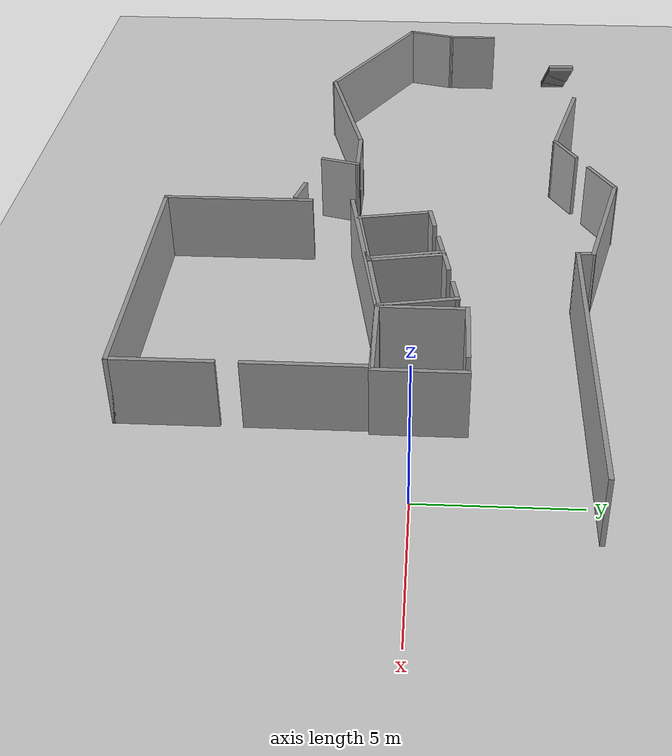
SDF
<sdf version="1.6">
 <world name="default">
  <model name="ground_plane">
   <static>1</static>
   <link name="link">
    <collision name="collision">
     <geometry><plane><normal>0 0 1</normal><size>100 100</size></plane></geometry>
     <surface>
      <contact><collide_bitmask>65535</collide_bitmask></contact>
      <friction><ode><mu>100</mu><mu2>50</mu2></ode></friction>
     </surface>
    </collision>
    <visual name="visual">
     <cast_shadows>0</cast_shadows>
     <geometry><plane><normal>0 0 1</normal><size>100 100</size></plane></geometry>
     <material>
      <script><uri>file://media/materials/scripts/gazebo.material</uri><name>Gazebo/Grey</name></script>
     </material>
    </visual>
   </link>
  </model>
  <model name="102Main_0">
   <pose>-7.64883 -5.15367 0 0 -0 0</pose>
   <link name="Wall_10">
    <collision name="Wall_10_Collision">
     <geometry><box><size>3 0.15 2.5</size></box></geometry>
     <pose>0 0 1.25 0 -0 0</pose>
    </collision>
    <visual name="Wall_10_Visual">
     <pose>0 0 1.25 0 -0 0</pose>
     <geometry><box><size>3 0.15 2.5</size></box></geometry>
     <material>
      <script><uri>file://media/materials/scripts/gazebo.material</uri><name>Gazebo/Grey</name></script>
      <ambient>1 1 1 1</ambient>
     </material>
     <meta><layer>0</layer></meta>
    </visual>
    <pose>3.19383 3.93367 0 0 -0 3.14159</pose>
   </link>
   <link name="Wall_11">
    <collision name="Wall_11_Collision">
     <geometry><box><size>6.63844 0.15 2.5</size></box></geometry>
     <pose>0 0 1.25 0 -0 0</pose>
    </collision>
    <visual name="Wall_11_Visual">
     <pose>0 0 1.25 0 -0 0</pose>
     <geometry><box><size>6.63844 0.15 2.5</size></box></geometry>
     <material>
      <script><uri>file://media/materials/scripts/gazebo.material</uri><name>Gazebo/Grey</name></script>
      <ambient>1 1 1 1</ambient>
     </material>
     <meta><layer>0</layer></meta>
    </visual>
    <pose>-1.41867 3.32967 0 0 -0 -2.95432</pose>
   </link>
   <link name="Wall_2">
    <collision name="Wall_2_Collision">
     <geometry><box><size>4 0.15 2.5</size></box></geometry>
     <pose>0 0 1.25 0 -0 0</pose>
    </collision>
    <visual name="Wall_2_Visual">
     <pose>0 0 1.25 0 -0 0</pose>
     <geometry><box><size>4 0.15 2.5</size></box></geometry>
     <material>
      <script><uri>file://media/materials/scripts/gazebo.material</uri><name>Gazebo/Grey</name></script>
      <ambient>1 1 1 1</ambient>
     </material>
     <meta><layer>0</layer></meta>
    </visual>
    <pose>4.61883 2.00867 0 0 -0 -1.5708</pose>
   </link>
   <link name="Wall_4">
    <collision name="Wall_4_Collision">
     <geometry><box><size>3.33 0.15 2.5</size></box></geometry>
     <pose>0 0 1.25 0 -0 0</pose>
    </collision>
    <visual name="Wall_4_Visual">
     <pose>0 0 1.25 0 -0 0</pose>
     <geometry><box><size>3.33 0.15 2.5</size></box></geometry>
     <material>
      <script><uri>file://media/materials/scripts/gazebo.material</uri><name>Gazebo/Grey</name></script>
      <ambient>1 1 1 1</ambient>
     </material>
     <meta><layer>0</layer></meta>
    </visual>
    <pose>4.61883 -2.35633 0 0 -0 -1.5708</pose>
   </link>
   <link name="Wall_6">
    <collision name="Wall_6_Collision">
     <geometry><box><size>9.33 0.15 2.5</size></box></geometry>
     <pose>0 0 1.25 0 -0 0</pose>
    </collision>
    <visual name="Wall_6_Visual">
     <pose>0 0 1.25 0 -0 0</pose>
     <geometry><box><size>9.33 0.15 2.5</size></box></geometry>
     <material>
      <script><uri>file://media/materials/scripts/gazebo.material</uri><name>Gazebo/Grey</name></script>
      <ambient>1 1 1 1</ambient>
     </material>
     <meta><layer>0</layer></meta>
    </visual>
    <pose>0.028826 -3.94633 0 0 -0 3.14159</pose>
   </link>
   <link name="Wall_8">
    <collision name="Wall_8_Collision">
     <geometry><box><size>5.33 0.15 2.5</size></box></geometry>
     <pose>0 0 1.25 0 -0 0</pose>
    </collision>
    <visual name="Wall_8_Visual">
     <pose>0 0 1.25 0 -0 0</pose>
     <geometry><box><size>5.33 0.15 2.5</size></box></geometry>
     <material>
      <script><uri>file://media/materials/scripts/gazebo.material</uri><name>Gazebo/Grey</name></script>
      <ambient>1 1 1 1</ambient>
     </material>
     <meta><layer>0</layer></meta>
    </visual>
    <pose>-4.56117 -1.35633 0 0 -0 1.5708</pose>
   </link>
   <static>1</static>
  </model>
  <model name="195">
   <pose>-10.1492 -0.660141 0 0 -0 0.184616</pose>
   <link name="Wall_52">
    <collision name="Wall_52_Collision">
     <geometry><box><size>2.667 0.15 2.5</size></box></geometry>
     <pose>0 0 1.25 0 -0 0</pose>
    </collision>
    <visual name="Wall_52_Visual">
     <pose>0 0 1.25 0 -0 0</pose>
     <geometry><box><size>2.667 0.15 2.5</size></box></geometry>
     <material>
      <script><uri>file://media/materials/scripts/gazebo.material</uri><name>Gazebo/Grey</name></script>
      <ambient>1 1 1 1</ambient>
     </material>
     <meta><layer>0</layer></meta>
    </visual>
    <pose>-0.000138 -1.2585 0 0 -0 0</pose>
   </link>
   <link name="Wall_53">
    <collision name="Wall_53_Collision">
     <geometry><box><size>2.667 0.15 2.5</size></box></geometry>
     <pose>0 0 1.25 0 -0 0</pose>
    </collision>
    <visual name="Wall_53_Visual">
     <pose>0 0 1.25 0 -0 0</pose>
     <geometry><box><size>2.667 0.15 2.5</size></box></geometry>
     <material>
      <script><uri>file://media/materials/scripts/gazebo.material</uri><name>Gazebo/Grey</name></script>
      <ambient>1 1 1 1</ambient>
     </material>
     <meta><layer>0</layer></meta>
    </visual>
    <pose>1.2585 0 0 0 -0 1.57069</pose>
   </link>
   <link name="Wall_55">
    <collision name="Wall_55_Collision">
     <geometry><box><size>2.667 0.15 2.5</size></box></geometry>
     <pose>0 0 1.25 0 -0 0</pose>
    </collision>
    <visual name="Wall_55_Visual">
     <pose>0 0 1.25 0 -0 0</pose>
     <geometry><box><size>2.667 0.15 2.5</size></box></geometry>
     <material>
      <script><uri>file://media/materials/scripts/gazebo.material</uri><name>Gazebo/Grey</name></script>
      <ambient>1 1 1 1</ambient>
     </material>
     <meta><layer>0</layer></meta>
    </visual>
    <pose>-1.2585 0 0 0 -0 -1.57091</pose>
   </link>
   <link name="Wall_57">
    <collision name="Wall_57_Collision">
     <geometry><box><size>1 0.15 2.5</size></box></geometry>
     <pose>0 0 1.25 0 -0 0</pose>
    </collision>
    <visual name="Wall_57_Visual">
     <pose>0 0 1.25 0 -0 0</pose>
     <geometry><box><size>1 0.15 2.5</size></box></geometry>
     <material>
      <script><uri>file://media/materials/scripts/gazebo.material</uri><name>Gazebo/Grey</name></script>
      <ambient>1 1 1 1</ambient>
     </material>
     <meta><layer>0</layer></meta>
    </visual>
    <pose>0.833639 1.2585 0 0 -0 3.14159</pose>
   </link>
   <link name="Wall_59">
    <collision name="Wall_59_Collision">
     <geometry><box><size>1 0.15 2.5</size></box></geometry>
     <pose>0 0 1.25 0 -0 0</pose>
    </collision>
    <visual name="Wall_59_Visual">
     <pose>0 0 1.25 0 -0 0</pose>
     <geometry><box><size>1 0.15 2.5</size></box></geometry>
     <material>
      <script><uri>file://media/materials/scripts/gazebo.material</uri><name>Gazebo/Grey</name></script>
      <ambient>1 1 1 1</ambient>
     </material>
     <meta><layer>0</layer></meta>
    </visual>
    <pose>-0.833361 1.2585 0 0 -0 3.14159</pose>
   </link>
   <static>1</static>
  </model>
  <model name="195_0">
   <pose>-7.52738 -0.162435 0 0 -0 0.178379</pose>
   <link name="Wall_52">
    <collision name="Wall_52_Collision">
     <geometry><box><size>2.667 0.15 2.5</size></box></geometry>
     <pose>0 0 1.25 0 -0 0</pose>
    </collision>
    <visual name="Wall_52_Visual">
     <pose>0 0 1.25 0 -0 0</pose>
     <geometry><box><size>2.667 0.15 2.5</size></box></geometry>
     <material>
      <script><uri>file://media/materials/scripts/gazebo.material</uri><name>Gazebo/Grey</name></script>
      <ambient>1 1 1 1</ambient>
     </material>
     <meta><layer>0</layer></meta>
    </visual>
    <pose>-0.000138 -1.2585 0 0 -0 0</pose>
   </link>
   <link name="Wall_53">
    <collision name="Wall_53_Collision">
     <geometry><box><size>2.667 0.15 2.5</size></box></geometry>
     <pose>0 0 1.25 0 -0 0</pose>
    </collision>
    <visual name="Wall_53_Visual">
     <pose>0 0 1.25 0 -0 0</pose>
     <geometry><box><size>2.667 0.15 2.5</size></box></geometry>
     <material>
      <script><uri>file://media/materials/scripts/gazebo.material</uri><name>Gazebo/Grey</name></script>
      <ambient>1 1 1 1</ambient>
     </material>
     <meta><layer>0</layer></meta>
    </visual>
    <pose>1.2585 0 0 0 -0 1.57069</pose>
   </link>
   <link name="Wall_55">
    <collision name="Wall_55_Collision">
     <geometry><box><size>2.667 0.15 2.5</size></box></geometry>
     <pose>0 0 1.25 0 -0 0</pose>
    </collision>
    <visual name="Wall_55_Visual">
     <pose>0 0 1.25 0 -0 0</pose>
     <geometry><box><size>2.667 0.15 2.5</size></box></geometry>
     <material>
      <script><uri>file://media/materials/scripts/gazebo.material</uri><name>Gazebo/Grey</name></script>
      <ambient>1 1 1 1</ambient>
     </material>
     <meta><layer>0</layer></meta>
    </visual>
    <pose>-1.2585 0 0 0 -0 -1.57091</pose>
   </link>
   <link name="Wall_57">
    <collision name="Wall_57_Collision">
     <geometry><box><size>1 0.15 2.5</size></box></geometry>
     <pose>0 0 1.25 0 -0 0</pose>
    </collision>
    <visual name="Wall_57_Visual">
     <pose>0 0 1.25 0 -0 0</pose>
     <geometry><box><size>1 0.15 2.5</size></box></geometry>
     <material>
      <script><uri>file://media/materials/scripts/gazebo.material</uri><name>Gazebo/Grey</name></script>
      <ambient>1 1 1 1</ambient>
     </material>
     <meta><layer>0</layer></meta>
    </visual>
    <pose>0.833639 1.2585 0 0 -0 3.14159</pose>
   </link>
   <link name="Wall_59">
    <collision name="Wall_59_Collision">
     <geometry><box><size>1 0.15 2.5</size></box></geometry>
     <pose>0 0 1.25 0 -0 0</pose>
    </collision>
    <visual name="Wall_59_Visual">
     <pose>0 0 1.25 0 -0 0</pose>
     <geometry><box><size>1 0.15 2.5</size></box></geometry>
     <material>
      <script><uri>file://media/materials/scripts/gazebo.material</uri><name>Gazebo/Grey</name></script>
      <ambient>1 1 1 1</ambient>
     </material>
     <meta><layer>0</layer></meta>
    </visual>
    <pose>-0.833361 1.2585 0 0 -0 3.14159</pose>
   </link>
   <static>1</static>
  </model>
  <model name="Staircase_0">
   <pose>-25.3039 5.74897 0 0 -0 0</pose>
   <link name="Stairs_0">
    <visual name="Stairs_0_Visual_0">
     <pose>-1.63333 -0 0.083333 0 -0 1.5708</pose>
     <geometry><box><size>1 0.233333 0.166667</size></box></geometry>
     <material>
      <script><uri>file://media/materials/scripts/gazebo.material</uri><name>Gazebo/Grey</name></script>
      <ambient>1 1 1 1</ambient>
     </material>
     <meta><layer>0</layer></meta>
    </visual>
    <collision name="Stairs_0_Collision_0">
     <geometry><box><size>1 0.233333 0.166667</size></box></geometry>
     <pose>-1.63333 -0 0.083333 0 -0 1.5708</pose>
    </collision>
    <visual name="Stairs_0_Visual_1">
     <pose>-1.4 -0 0.25 0 -0 1.5708</pose>
     <geometry><box><size>1 0.233333 0.166667</size></box></geometry>
     <material>
      <script><uri>file://media/materials/scripts/gazebo.material</uri><name>Gazebo/Grey</name></script>
      <ambient>1 1 1 1</ambient>
     </material>
     <meta><layer>0</layer></meta>
    </visual>
    <collision name="Stairs_0_Collision_1">
     <geometry><box><size>1 0.233333 0.166667</size></box></geometry>
     <pose>-1.4 -0 0.25 0 -0 1.5708</pose>
    </collision>
    <visual name="Stairs_0_Visual_2">
     <pose>-1.16667 -0 0.416667 0 -0 1.5708</pose>
     <geometry><box><size>1 0.233333 0.166667</size></box></geometry>
     <material>
      <script><uri>file://media/materials/scripts/gazebo.material</uri><name>Gazebo/Grey</name></script>
      <ambient>1 1 1 1</ambient>
     </material>
     <meta><layer>0</layer></meta>
    </visual>
    <collision name="Stairs_0_Collision_2">
     <geometry><box><size>1 0.233333 0.166667</size></box></geometry>
     <pose>-1.16667 -0 0.416667 0 -0 1.5708</pose>
    </collision>
    <visual name="Stairs_0_Visual_3">
     <pose>-0.933333 -0 0.583333 0 -0 1.5708</pose>
     <geometry><box><size>1 0.233333 0.166667</size></box></geometry>
     <material>
      <script><uri>file://media/materials/scripts/gazebo.material</uri><name>Gazebo/Grey</name></script>
      <ambient>1 1 1 1</ambient>
     </material>
     <meta><layer>0</layer></meta>
    </visual>
    <collision name="Stairs_0_Collision_3">
     <geometry><box><size>1 0.233333 0.166667</size></box></geometry>
     <pose>-0.933333 -0 0.583333 0 -0 1.5708</pose>
    </collision>
    <visual name="Stairs_0_Visual_4">
     <pose>-0.7 0 0.75 0 -0 1.5708</pose>
     <geometry><box><size>1 0.233333 0.166667</size></box></geometry>
     <material>
      <script><uri>file://media/materials/scripts/gazebo.material</uri><name>Gazebo/Grey</name></script>
      <ambient>1 1 1 1</ambient>
     </material>
     <meta><layer>0</layer></meta>
    </visual>
    <collision name="Stairs_0_Collision_4">
     <geometry><box><size>1 0.233333 0.166667</size></box></geometry>
     <pose>-0.7 0 0.75 0 -0 1.5708</pose>
    </collision>
    <visual name="Stairs_0_Visual_5">
     <pose>-0.466667 0 0.916667 0 -0 1.5708</pose>
     <geometry><box><size>1 0.233333 0.166667</size></box></geometry>
     <material>
      <script><uri>file://media/materials/scripts/gazebo.material</uri><name>Gazebo/Grey</name></script>
      <ambient>1 1 1 1</ambient>
     </material>
     <meta><layer>0</layer></meta>
    </visual>
    <collision name="Stairs_0_Collision_5">
     <geometry><box><size>1 0.233333 0.166667</size></box></geometry>
     <pose>-0.466667 0 0.916667 0 -0 1.5708</pose>
    </collision>
    <visual name="Stairs_0_Visual_6">
     <pose>-0.233333 0 1.08333 0 -0 1.5708</pose>
     <geometry><box><size>1 0.233333 0.166667</size></box></geometry>
     <material>
      <script><uri>file://media/materials/scripts/gazebo.material</uri><name>Gazebo/Grey</name></script>
      <ambient>1 1 1 1</ambient>
     </material>
     <meta><layer>0</layer></meta>
    </visual>
    <collision name="Stairs_0_Collision_6">
     <geometry><box><size>1 0.233333 0.166667</size></box></geometry>
     <pose>-0.233333 0 1.08333 0 -0 1.5708</pose>
    </collision>
    <visual name="Stairs_0_Visual_7">
     <pose>0 0 1.25 0 -0 1.5708</pose>
     <geometry><box><size>1 0.233333 0.166667</size></box></geometry>
     <material>
      <script><uri>file://media/materials/scripts/gazebo.material</uri><name>Gazebo/Grey</name></script>
      <ambient>1 1 1 1</ambient>
     </material>
     <meta><layer>0</layer></meta>
    </visual>
    <collision name="Stairs_0_Collision_7">
     <geometry><box><size>1 0.233333 0.166667</size></box></geometry>
     <pose>0 0 1.25 0 -0 1.5708</pose>
    </collision>
    <visual name="Stairs_0_Visual_8">
     <pose>0.233333 0 1.41667 0 -0 1.5708</pose>
     <geometry><box><size>1 0.233333 0.166667</size></box></geometry>
     <material>
      <script><uri>file://media/materials/scripts/gazebo.material</uri><name>Gazebo/Grey</name></script>
      <ambient>1 1 1 1</ambient>
     </material>
     <meta><layer>0</layer></meta>
    </visual>
    <collision name="Stairs_0_Collision_8">
     <geometry><box><size>1 0.233333 0.166667</size></box></geometry>
     <pose>0.233333 0 1.41667 0 -0 1.5708</pose>
    </collision>
    <visual name="Stairs_0_Visual_9">
     <pose>0.466667 0 1.58333 0 -0 1.5708</pose>
     <geometry><box><size>1 0.233333 0.166667</size></box></geometry>
     <material>
      <script><uri>file://media/materials/scripts/gazebo.material</uri><name>Gazebo/Grey</name></script>
      <ambient>1 1 1 1</ambient>
     </material>
     <meta><layer>0</layer></meta>
    </visual>
    <collision name="Stairs_0_Collision_9">
     <geometry><box><size>1 0.233333 0.166667</size></box></geometry>
     <pose>0.466667 0 1.58333 0 -0 1.5708</pose>
    </collision>
    <visual name="Stairs_0_Visual_10">
     <pose>0.7 0 1.75 0 -0 1.5708</pose>
     <geometry><box><size>1 0.233333 0.166667</size></box></geometry>
     <material>
      <script><uri>file://media/materials/scripts/gazebo.material</uri><name>Gazebo/Grey</name></script>
      <ambient>1 1 1 1</ambient>
     </material>
     <meta><layer>0</layer></meta>
    </visual>
    <collision name="Stairs_0_Collision_10">
     <geometry><box><size>1 0.233333 0.166667</size></box></geometry>
     <pose>0.7 0 1.75 0 -0 1.5708</pose>
    </collision>
    <visual name="Stairs_0_Visual_11">
     <pose>0.933334 0 1.91667 0 -0 1.5708</pose>
     <geometry><box><size>1 0.233333 0.166667</size></box></geometry>
     <material>
      <script><uri>file://media/materials/scripts/gazebo.material</uri><name>Gazebo/Grey</name></script>
      <ambient>1 1 1 1</ambient>
     </material>
     <meta><layer>0</layer></meta>
    </visual>
    <collision name="Stairs_0_Collision_11">
     <geometry><box><size>1 0.233333 0.166667</size></box></geometry>
     <pose>0.933334 0 1.91667 0 -0 1.5708</pose>
    </collision>
    <visual name="Stairs_0_Visual_12">
     <pose>1.16667 0 2.08333 0 -0 1.5708</pose>
     <geometry><box><size>1 0.233333 0.166667</size></box></geometry>
     <material>
      <script><uri>file://media/materials/scripts/gazebo.material</uri><name>Gazebo/Grey</name></script>
      <ambient>1 1 1 1</ambient>
     </material>
     <meta><layer>0</layer></meta>
    </visual>
    <collision name="Stairs_0_Collision_12">
     <geometry><box><size>1 0.233333 0.166667</size></box></geometry>
     <pose>1.16667 0 2.08333 0 -0 1.5708</pose>
    </collision>
    <visual name="Stairs_0_Visual_13">
     <pose>1.4 0 2.25 0 -0 1.5708</pose>
     <geometry><box><size>1 0.233333 0.166667</size></box></geometry>
     <material>
      <script><uri>file://media/materials/scripts/gazebo.material</uri><name>Gazebo/Grey</name></script>
      <ambient>1 1 1 1</ambient>
     </material>
     <meta><layer>0</layer></meta>
    </visual>
    <collision name="Stairs_0_Collision_13">
     <geometry><box><size>1 0.233333 0.166667</size></box></geometry>
     <pose>1.4 0 2.25 0 -0 1.5708</pose>
    </collision>
    <visual name="Stairs_0_Visual_14">
     <pose>1.63333 0 2.41667 0 -0 1.5708</pose>
     <geometry><box><size>1 0.233333 0.166667</size></box></geometry>
     <material>
      <script><uri>file://media/materials/scripts/gazebo.material</uri><name>Gazebo/Grey</name></script>
      <ambient>1 1 1 1</ambient>
     </material>
     <meta><layer>0</layer></meta>
    </visual>
    <collision name="Stairs_0_Collision_14">
     <geometry><box><size>1 0.233333 0.166667</size></box></geometry>
     <pose>1.63333 0 2.41667 0 -0 1.5708</pose>
    </collision>
   </link>
   <static>1</static>
  </model>
  <model name="100">
   <link name="Wall_42">
    <pose>-6.83258 2.77271 0 0 0 -1.5708</pose>
    <visual name="Wall_42_Visual">
     <pose>0 0 1.25 0 -0 0</pose>
     <geometry><box><size>2 0.15 2.5</size></box></geometry>
     <material>
      <script><uri>file://media/materials/scripts/gazebo.material</uri><name>Gazebo/Grey</name></script>
      <ambient>1 1 1 1</ambient>
      <shader type="pixel"/>
     </material>
     <meta><layer>0</layer></meta>
    </visual>
    <collision name="Wall_42_Collision">
     <pose>0 0 1.25 0 -0 0</pose>
     <geometry><box><size>2 0.15 2.5</size></box></geometry>
     <surface>
      <friction>
       <ode><mu>1</mu><mu2>1</mu2><fdir1>0 0 0</fdir1><slip1>0</slip1><slip2>0</slip2></ode>
       <torsional>
        <coefficient>1</coefficient>
        <patch_radius>0</patch_radius>
        <surface_radius>0</surface_radius>
        <use_patch_radius>1</use_patch_radius>
        <ode><slip>0</slip></ode>
       </torsional>
      </friction>
      <bounce><restitution_coefficient>0</restitution_coefficient><threshold>1e+06</threshold></bounce>
      <contact>
       <collide_without_contact>0</collide_without_contact>
       <collide_without_contact_bitmask>1</collide_without_contact_bitmask>
       <collide_bitmask>1</collide_bitmask>
       <ode>
        <soft_cfm>0</soft_cfm>
        <soft_erp>0.2</soft_erp>
        <kp>1e+13</kp>
        <kd>1</kd>
        <max_vel>0.01</max_vel>
        <min_depth>0</min_depth>
       </ode>
       <bullet>
        <split_impulse>1</split_impulse>
        <split_impulse_penetration_threshold>-0.01</split_impulse_penetration_threshold>
        <soft_cfm>0</soft_cfm>
        <soft_erp>0.2</soft_erp>
        <kp>1e+13</kp>
        <kd>1</kd>
       </bullet>
      </contact>
     </surface>
    </collision>
   </link>
   <link name="Wall_43">
    <pose>-7.07199 0.954231 0 0 0 -1.8326</pose>
    <visual name="Wall_43_Visual">
     <pose>0 0 1.25 0 -0 0</pose>
     <geometry><box><size>2 0.15 2.5</size></box></geometry>
     <material>
      <script><uri>file://media/materials/scripts/gazebo.material</uri><name>Gazebo/Grey</name></script>
      <ambient>1 1 1 1</ambient>
      <shader type="pixel"/>
     </material>
     <meta><layer>0</layer></meta>
    </visual>
    <collision name="Wall_43_Collision">
     <pose>0 0 1.25 0 -0 0</pose>
     <geometry><box><size>2 0.15 2.5</size></box></geometry>
     <surface>
      <friction>
       <ode><mu>1</mu><mu2>1</mu2><fdir1>0 0 0</fdir1><slip1>0</slip1><slip2>0</slip2></ode>
       <torsional>
        <coefficient>1</coefficient>
        <patch_radius>0</patch_radius>
        <surface_radius>0</surface_radius>
        <use_patch_radius>1</use_patch_radius>
        <ode><slip>0</slip></ode>
       </torsional>
      </friction>
      <bounce><restitution_coefficient>0</restitution_coefficient><threshold>1e+06</threshold></bounce>
      <contact>
       <collide_without_contact>0</collide_without_contact>
       <collide_without_contact_bitmask>1</collide_without_contact_bitmask>
       <collide_bitmask>1</collide_bitmask>
       <ode>
        <soft_cfm>0</soft_cfm>
        <soft_erp>0.2</soft_erp>
        <kp>1e+13</kp>
        <kd>1</kd>
        <max_vel>0.01</max_vel>
        <min_depth>0</min_depth>
       </ode>
       <bullet>
        <split_impulse>1</split_impulse>
        <split_impulse_penetration_threshold>-0.01</split_impulse_penetration_threshold>
        <soft_cfm>0</soft_cfm>
        <soft_erp>0.2</soft_erp>
        <kp>1e+13</kp>
        <kd>1</kd>
       </bullet>
      </contact>
     </surface>
    </collision>
   </link>
   <link name="Wall_44">
    <pose>-4.63365 -1.48525 0 0 0 -0.523599</pose>
    <visual name="Wall_44_Visual">
     <pose>0 0 1.25 0 -0 0</pose>
     <geometry><box><size>6.334 0.15 2.5</size></box></geometry>
     <material>
      <script><uri>file://media/materials/scripts/gazebo.material</uri><name>Gazebo/Grey</name></script>
      <ambient>1 1 1 1</ambient>
      <shader type="pixel"/>
     </material>
     <meta><layer>0</layer></meta>
    </visual>
    <collision name="Wall_44_Collision">
     <pose>0 0 1.25 0 -0 0</pose>
     <geometry><box><size>6.334 0.15 2.5</size></box></geometry>
     <surface>
      <friction>
       <ode><mu>1</mu><mu2>1</mu2><fdir1>0 0 0</fdir1><slip1>0</slip1><slip2>0</slip2></ode>
       <torsional>
        <coefficient>1</coefficient>
        <patch_radius>0</patch_radius>
        <surface_radius>0</surface_radius>
        <use_patch_radius>1</use_patch_radius>
        <ode><slip>0</slip></ode>
       </torsional>
      </friction>
      <bounce><restitution_coefficient>0</restitution_coefficient><threshold>1e+06</threshold></bounce>
      <contact>
       <collide_without_contact>0</collide_without_contact>
       <collide_without_contact_bitmask>1</collide_without_contact_bitmask>
       <collide_bitmask>1</collide_bitmask>
       <ode>
        <soft_cfm>0</soft_cfm>
        <soft_erp>0.2</soft_erp>
        <kp>1e+13</kp>
        <kd>1</kd>
        <max_vel>0.01</max_vel>
        <min_depth>0</min_depth>
       </ode>
       <bullet>
        <split_impulse>1</split_impulse>
        <split_impulse_penetration_threshold>-0.01</split_impulse_penetration_threshold>
        <soft_cfm>0</soft_cfm>
        <soft_erp>0.2</soft_erp>
        <kp>1e+13</kp>
        <kd>1</kd>
       </bullet>
      </contact>
     </surface>
    </collision>
   </link>
   <link name="Wall_45">
    <pose>0.539701 -2.33094 0 0 -0 0.273583</pose>
    <visual name="Wall_45_Visual">
     <pose>0 0 1.25 0 -0 0</pose>
     <geometry><box><size>5.334 0.15 2.5</size></box></geometry>
     <material>
      <script><uri>file://media/materials/scripts/gazebo.material</uri><name>Gazebo/Grey</name></script>
      <ambient>1 1 1 1</ambient>
      <shader type="pixel"/>
     </material>
     <meta><layer>0</layer></meta>
    </visual>
    <collision name="Wall_45_Collision">
     <pose>0 0 1.25 0 -0 0</pose>
     <geometry><box><size>5.334 0.15 2.5</size></box></geometry>
     <surface>
      <friction>
       <ode><mu>1</mu><mu2>1</mu2><fdir1>0 0 0</fdir1><slip1>0</slip1><slip2>0</slip2></ode>
       <torsional>
        <coefficient>1</coefficient>
        <patch_radius>0</patch_radius>
        <surface_radius>0</surface_radius>
        <use_patch_radius>1</use_patch_radius>
        <ode><slip>0</slip></ode>
       </torsional>
      </friction>
      <bounce><restitution_coefficient>0</restitution_coefficient><threshold>1e+06</threshold></bounce>
      <contact>
       <collide_without_contact>0</collide_without_contact>
       <collide_without_contact_bitmask>1</collide_without_contact_bitmask>
       <collide_bitmask>1</collide_bitmask>
       <ode>
        <soft_cfm>0</soft_cfm>
        <soft_erp>0.2</soft_erp>
        <kp>1e+13</kp>
        <kd>1</kd>
        <max_vel>0.01</max_vel>
        <min_depth>0</min_depth>
       </ode>
       <bullet>
        <split_impulse>1</split_impulse>
        <split_impulse_penetration_threshold>-0.01</split_impulse_penetration_threshold>
        <soft_cfm>0</soft_cfm>
        <soft_erp>0.2</soft_erp>
        <kp>1e+13</kp>
        <kd>1</kd>
       </bullet>
      </contact>
     </surface>
    </collision>
   </link>
   <link name="Wall_46">
    <pose>3.96028 -1.63052 0 0 -0 0.000109</pose>
    <visual name="Wall_46_Visual">
     <pose>0 0 1.25 0 -0 0</pose>
     <geometry><box><size>2 0.15 2.5</size></box></geometry>
     <material>
      <script><uri>file://media/materials/scripts/gazebo.material</uri><name>Gazebo/Grey</name></script>
      <ambient>1 1 1 1</ambient>
      <shader type="pixel"/>
     </material>
     <meta><layer>0</layer></meta>
    </visual>
    <collision name="Wall_46_Collision">
     <pose>0 0 1.25 0 -0 0</pose>
     <geometry><box><size>2 0.15 2.5</size></box></geometry>
     <surface>
      <friction>
       <ode><mu>1</mu><mu2>1</mu2><fdir1>0 0 0</fdir1><slip1>0</slip1><slip2>0</slip2></ode>
       <torsional>
        <coefficient>1</coefficient>
        <patch_radius>0</patch_radius>
        <surface_radius>0</surface_radius>
        <use_patch_radius>1</use_patch_radius>
        <ode><slip>0</slip></ode>
       </torsional>
      </friction>
      <bounce><restitution_coefficient>0</restitution_coefficient><threshold>1e+06</threshold></bounce>
      <contact>
       <collide_without_contact>0</collide_without_contact>
       <collide_without_contact_bitmask>1</collide_without_contact_bitmask>
       <collide_bitmask>1</collide_bitmask>
       <ode>
        <soft_cfm>0</soft_cfm>
        <soft_erp>0.2</soft_erp>
        <kp>1e+13</kp>
        <kd>1</kd>
        <max_vel>0.01</max_vel>
        <min_depth>0</min_depth>
       </ode>
       <bullet>
        <split_impulse>1</split_impulse>
        <split_impulse_penetration_threshold>-0.01</split_impulse_penetration_threshold>
        <soft_cfm>0</soft_cfm>
        <soft_erp>0.2</soft_erp>
        <kp>1e+13</kp>
        <kd>1</kd>
       </bullet>
      </contact>
     </surface>
    </collision>
   </link>
   <link name="Wall_47">
    <pose>4.71077 -2.28242 0 0 0 -1.83231</pose>
    <visual name="Wall_47_Visual">
     <pose>0 0 1.25 0 -0 0</pose>
     <geometry><box><size>1.5 0.15 2.5</size></box></geometry>
     <material>
      <script><uri>file://media/materials/scripts/gazebo.material</uri><name>Gazebo/Grey</name></script>
      <ambient>1 1 1 1</ambient>
      <shader type="pixel"/>
     </material>
     <meta><layer>0</layer></meta>
    </visual>
    <collision name="Wall_47_Collision">
     <pose>0 0 1.25 0 -0 0</pose>
     <geometry><box><size>1.5 0.15 2.5</size></box></geometry>
     <surface>
      <friction>
       <ode><mu>1</mu><mu2>1</mu2><fdir1>0 0 0</fdir1><slip1>0</slip1><slip2>0</slip2></ode>
       <torsional>
        <coefficient>1</coefficient>
        <patch_radius>0</patch_radius>
        <surface_radius>0</surface_radius>
        <use_patch_radius>1</use_patch_radius>
        <ode><slip>0</slip></ode>
       </torsional>
      </friction>
      <bounce><restitution_coefficient>0</restitution_coefficient><threshold>1e+06</threshold></bounce>
      <contact>
       <collide_without_contact>0</collide_without_contact>
       <collide_without_contact_bitmask>1</collide_without_contact_bitmask>
       <collide_bitmask>1</collide_bitmask>
       <ode>
        <soft_cfm>0</soft_cfm>
        <soft_erp>0.2</soft_erp>
        <kp>1e+13</kp>
        <kd>1</kd>
        <max_vel>0.01</max_vel>
        <min_depth>0</min_depth>
       </ode>
       <bullet>
        <split_impulse>1</split_impulse>
        <split_impulse_penetration_threshold>-0.01</split_impulse_penetration_threshold>
        <soft_cfm>0</soft_cfm>
        <soft_erp>0.2</soft_erp>
        <kp>1e+13</kp>
        <kd>1</kd>
       </bullet>
      </contact>
     </surface>
    </collision>
   </link>
   <link name="Wall_52">
    <pose>6.87091 -3.55999 0 0 0 -0.261799</pose>
    <visual name="Wall_52_Visual">
     <pose>0 0 1.25 0 -0 0</pose>
     <geometry><box><size>1.084 0.15 2.5</size></box></geometry>
     <material>
      <script><uri>file://media/materials/scripts/gazebo.material</uri><name>Gazebo/Grey</name></script>
      <ambient>1 1 1 1</ambient>
      <shader type="pixel"/>
     </material>
     <meta><layer>0</layer></meta>
    </visual>
    <collision name="Wall_52_Collision">
     <pose>0 0 1.25 0 -0 0</pose>
     <geometry><box><size>1.084 0.15 2.5</size></box></geometry>
     <surface>
      <friction>
       <ode><mu>1</mu><mu2>1</mu2><fdir1>0 0 0</fdir1><slip1>0</slip1><slip2>0</slip2></ode>
       <torsional>
        <coefficient>1</coefficient>
        <patch_radius>0</patch_radius>
        <surface_radius>0</surface_radius>
        <use_patch_radius>1</use_patch_radius>
        <ode><slip>0</slip></ode>
       </torsional>
      </friction>
      <bounce><restitution_coefficient>0</restitution_coefficient><threshold>1e+06</threshold></bounce>
      <contact>
       <collide_without_contact>0</collide_without_contact>
       <collide_without_contact_bitmask>1</collide_without_contact_bitmask>
       <collide_bitmask>1</collide_bitmask>
       <ode>
        <soft_cfm>0</soft_cfm>
        <soft_erp>0.2</soft_erp>
        <kp>1e+13</kp>
        <kd>1</kd>
        <max_vel>0.01</max_vel>
        <min_depth>0</min_depth>
       </ode>
       <bullet>
        <split_impulse>1</split_impulse>
        <split_impulse_penetration_threshold>-0.01</split_impulse_penetration_threshold>
        <soft_cfm>0</soft_cfm>
        <soft_erp>0.2</soft_erp>
        <kp>1e+13</kp>
        <kd>1</kd>
       </bullet>
      </contact>
     </surface>
    </collision>
   </link>
   <static>1</static>
   <pose>-19.7573 -0.79838 0 0 -0 0</pose>
  </model>
  <model name="101Entrance">
   <link name="Wall_22">
    <pose>-9.10488 -0.457692 0 0 0 -0.261799</pose>
    <visual name="Wall_22_Visual">
     <pose>0 0 1.25 0 -0 0</pose>
     <geometry><box><size>4 0.15 2.5</size></box></geometry>
     <material>
      <script><uri>file://media/materials/scripts/gazebo.material</uri><name>Gazebo/Grey</name></script>
      <ambient>1 1 1 1</ambient>
      <shader type="pixel"/>
     </material>
     <meta><layer>0</layer></meta>
    </visual>
    <collision name="Wall_22_Collision">
     <pose>0 0 1.25 0 -0 0</pose>
     <geometry><box><size>4 0.15 2.5</size></box></geometry>
     <surface>
      <friction>
       <ode><mu>1</mu><mu2>1</mu2><fdir1>0 0 0</fdir1><slip1>0</slip1><slip2>0</slip2></ode>
       <torsional>
        <coefficient>1</coefficient>
        <patch_radius>0</patch_radius>
        <surface_radius>0</surface_radius>
        <use_patch_radius>1</use_patch_radius>
        <ode><slip>0</slip></ode>
       </torsional>
      </friction>
      <bounce><restitution_coefficient>0</restitution_coefficient><threshold>1e+06</threshold></bounce>
      <contact>
       <collide_without_contact>0</collide_without_contact>
       <collide_without_contact_bitmask>1</collide_without_contact_bitmask>
       <collide_bitmask>1</collide_bitmask>
       <ode>
        <soft_cfm>0</soft_cfm>
        <soft_erp>0.2</soft_erp>
        <kp>1e+13</kp>
        <kd>1</kd>
        <max_vel>0.01</max_vel>
        <min_depth>0</min_depth>
       </ode>
       <bullet>
        <split_impulse>1</split_impulse>
        <split_impulse_penetration_threshold>-0.01</split_impulse_penetration_threshold>
        <soft_cfm>0</soft_cfm>
        <soft_erp>0.2</soft_erp>
        <kp>1e+13</kp>
        <kd>1</kd>
       </bullet>
      </contact>
     </surface>
    </collision>
   </link>
   <link name="Wall_24">
    <pose>-1.72029 0.376456 0 0 0 -0.259413</pose>
    <visual name="Wall_24_Visual">
     <pose>0 0 1.25 0 -0 0</pose>
     <geometry><box><size>4.668 0.15 2.5</size></box></geometry>
     <material>
      <script><uri>file://media/materials/scripts/gazebo.material</uri><name>Gazebo/Grey</name></script>
      <ambient>1 1 1 1</ambient>
      <shader type="pixel"/>
     </material>
     <meta><layer>0</layer></meta>
    </visual>
    <collision name="Wall_24_Collision">
     <pose>0 0 1.25 0 -0 0</pose>
     <geometry><box><size>4.668 0.15 2.5</size></box></geometry>
     <surface>
      <friction>
       <ode><mu>1</mu><mu2>1</mu2><fdir1>0 0 0</fdir1><slip1>0</slip1><slip2>0</slip2></ode>
       <torsional>
        <coefficient>1</coefficient>
        <patch_radius>0</patch_radius>
        <surface_radius>0</surface_radius>
        <use_patch_radius>1</use_patch_radius>
        <ode><slip>0</slip></ode>
       </torsional>
      </friction>
      <bounce><restitution_coefficient>0</restitution_coefficient><threshold>1e+06</threshold></bounce>
      <contact>
       <collide_without_contact>0</collide_without_contact>
       <collide_without_contact_bitmask>1</collide_without_contact_bitmask>
       <collide_bitmask>1</collide_bitmask>
       <ode>
        <soft_cfm>0</soft_cfm>
        <soft_erp>0.2</soft_erp>
        <kp>1e+13</kp>
        <kd>1</kd>
        <max_vel>0.01</max_vel>
        <min_depth>0</min_depth>
       </ode>
       <bullet>
        <split_impulse>1</split_impulse>
        <split_impulse_penetration_threshold>-0.01</split_impulse_penetration_threshold>
        <soft_cfm>0</soft_cfm>
        <soft_erp>0.2</soft_erp>
        <kp>1e+13</kp>
        <kd>1</kd>
       </bullet>
      </contact>
     </surface>
    </collision>
   </link>
   <link name="Wall_25">
    <pose>0.463122 -0.461506 0 0 0 -1.5708</pose>
    <visual name="Wall_25_Visual">
     <pose>0 0 1.25 0 -0 0</pose>
     <geometry><box><size>0.667 0.15 2.5</size></box></geometry>
     <material>
      <script><uri>file://media/materials/scripts/gazebo.material</uri><name>Gazebo/Grey</name></script>
      <ambient>1 1 1 1</ambient>
      <shader type="pixel"/>
     </material>
     <meta><layer>0</layer></meta>
    </visual>
    <collision name="Wall_25_Collision">
     <pose>0 0 1.25 0 -0 0</pose>
     <geometry><box><size>0.667 0.15 2.5</size></box></geometry>
     <surface>
      <friction>
       <ode><mu>1</mu><mu2>1</mu2><fdir1>0 0 0</fdir1><slip1>0</slip1><slip2>0</slip2></ode>
       <torsional>
        <coefficient>1</coefficient>
        <patch_radius>0</patch_radius>
        <surface_radius>0</surface_radius>
        <use_patch_radius>1</use_patch_radius>
        <ode><slip>0</slip></ode>
       </torsional>
      </friction>
      <bounce><restitution_coefficient>0</restitution_coefficient><threshold>1e+06</threshold></bounce>
      <contact>
       <collide_without_contact>0</collide_without_contact>
       <collide_without_contact_bitmask>1</collide_without_contact_bitmask>
       <collide_bitmask>1</collide_bitmask>
       <ode>
        <soft_cfm>0</soft_cfm>
        <soft_erp>0.2</soft_erp>
        <kp>1e+13</kp>
        <kd>1</kd>
        <max_vel>0.01</max_vel>
        <min_depth>0</min_depth>
       </ode>
       <bullet>
        <split_impulse>1</split_impulse>
        <split_impulse_penetration_threshold>-0.01</split_impulse_penetration_threshold>
        <soft_cfm>0</soft_cfm>
        <soft_erp>0.2</soft_erp>
        <kp>1e+13</kp>
        <kd>1</kd>
       </bullet>
      </contact>
     </surface>
    </collision>
   </link>
   <link name="Wall_26">
    <pose>5.72212 -0.718504 0 0 -0 0.000286</pose>
    <visual name="Wall_26_Visual">
     <pose>0 0 1.25 0 -0 0</pose>
     <geometry><box><size>10.668 0.15 2.5</size></box></geometry>
     <material>
      <script><uri>file://media/materials/scripts/gazebo.material</uri><name>Gazebo/Grey</name></script>
      <ambient>1 1 1 1</ambient>
      <shader type="pixel"/>
     </material>
     <meta><layer>0</layer></meta>
    </visual>
    <collision name="Wall_26_Collision">
     <pose>0 0 1.25 0 -0 0</pose>
     <geometry><box><size>10.668 0.15 2.5</size></box></geometry>
     <surface>
      <friction>
       <ode><mu>1</mu><mu2>1</mu2><fdir1>0 0 0</fdir1><slip1>0</slip1><slip2>0</slip2></ode>
       <torsional>
        <coefficient>1</coefficient>
        <patch_radius>0</patch_radius>
        <surface_radius>0</surface_radius>
        <use_patch_radius>1</use_patch_radius>
        <ode><slip>0</slip></ode>
       </torsional>
      </friction>
      <bounce><restitution_coefficient>0</restitution_coefficient><threshold>1e+06</threshold></bounce>
      <contact>
       <collide_without_contact>0</collide_without_contact>
       <collide_without_contact_bitmask>1</collide_without_contact_bitmask>
       <collide_bitmask>1</collide_bitmask>
       <ode>
        <soft_cfm>0</soft_cfm>
        <soft_erp>0.2</soft_erp>
        <kp>1e+13</kp>
        <kd>1</kd>
        <max_vel>0.01</max_vel>
        <min_depth>0</min_depth>
       </ode>
       <bullet>
        <split_impulse>1</split_impulse>
        <split_impulse_penetration_threshold>-0.01</split_impulse_penetration_threshold>
        <soft_cfm>0</soft_cfm>
        <soft_erp>0.2</soft_erp>
        <kp>1e+13</kp>
        <kd>1</kd>
       </bullet>
      </contact>
     </surface>
    </collision>
   </link>
   <link name="Wall_28">
    <pose>-6.6609 -0.618419 0 0 -0 0.523599</pose>
    <visual name="Wall_28_Visual">
     <pose>0 0 1.25 0 -0 0</pose>
     <geometry><box><size>1.5 0.15 2.5</size></box></geometry>
     <material>
      <script><uri>file://media/materials/scripts/gazebo.material</uri><name>Gazebo/Grey</name></script>
      <ambient>1 1 1 1</ambient>
      <shader type="pixel"/>
     </material>
     <meta><layer>0</layer></meta>
    </visual>
    <collision name="Wall_28_Collision">
     <pose>0 0 1.25 0 -0 0</pose>
     <geometry><box><size>1.5 0.15 2.5</size></box></geometry>
     <surface>
      <friction>
       <ode><mu>1</mu><mu2>1</mu2><fdir1>0 0 0</fdir1><slip1>0</slip1><slip2>0</slip2></ode>
       <torsional>
        <coefficient>1</coefficient>
        <patch_radius>0</patch_radius>
        <surface_radius>0</surface_radius>
        <use_patch_radius>1</use_patch_radius>
        <ode><slip>0</slip></ode>
       </torsional>
      </friction>
      <bounce><restitution_coefficient>0</restitution_coefficient><threshold>1e+06</threshold></bounce>
      <contact>
       <collide_without_contact>0</collide_without_contact>
       <collide_without_contact_bitmask>1</collide_without_contact_bitmask>
       <collide_bitmask>1</collide_bitmask>
       <ode>
        <soft_cfm>0</soft_cfm>
        <soft_erp>0.2</soft_erp>
        <kp>1e+13</kp>
        <kd>1</kd>
        <max_vel>0.01</max_vel>
        <min_depth>0</min_depth>
       </ode>
       <bullet>
        <split_impulse>1</split_impulse>
        <split_impulse_penetration_threshold>-0.01</split_impulse_penetration_threshold>
        <soft_cfm>0</soft_cfm>
        <soft_erp>0.2</soft_erp>
        <kp>1e+13</kp>
        <kd>1</kd>
       </bullet>
      </contact>
     </surface>
    </collision>
   </link>
   <link name="Wall_30">
    <pose>-4.59653 0.555919 0 0 -0 0.523599</pose>
    <visual name="Wall_30_Visual">
     <pose>0 0 1.25 0 -0 0</pose>
     <geometry><box><size>1.75 0.15 2.5</size></box></geometry>
     <material>
      <script><uri>file://media/materials/scripts/gazebo.material</uri><name>Gazebo/Grey</name></script>
      <ambient>1 1 1 1</ambient>
      <shader type="pixel"/>
     </material>
     <meta><layer>0</layer></meta>
    </visual>
    <collision name="Wall_30_Collision">
     <pose>0 0 1.25 0 -0 0</pose>
     <geometry><box><size>1.75 0.15 2.5</size></box></geometry>
     <surface>
      <friction>
       <ode><mu>1</mu><mu2>1</mu2><fdir1>0 0 0</fdir1><slip1>0</slip1><slip2>0</slip2></ode>
       <torsional>
        <coefficient>1</coefficient>
        <patch_radius>0</patch_radius>
        <surface_radius>0</surface_radius>
        <use_patch_radius>1</use_patch_radius>
        <ode><slip>0</slip></ode>
       </torsional>
      </friction>
      <bounce><restitution_coefficient>0</restitution_coefficient><threshold>1e+06</threshold></bounce>
      <contact>
       <collide_without_contact>0</collide_without_contact>
       <collide_without_contact_bitmask>1</collide_without_contact_bitmask>
       <collide_bitmask>1</collide_bitmask>
       <ode>
        <soft_cfm>0</soft_cfm>
        <soft_erp>0.2</soft_erp>
        <kp>1e+13</kp>
        <kd>1</kd>
        <max_vel>0.01</max_vel>
        <min_depth>0</min_depth>
       </ode>
       <bullet>
        <split_impulse>1</split_impulse>
        <split_impulse_penetration_threshold>-0.01</split_impulse_penetration_threshold>
        <soft_cfm>0</soft_cfm>
        <soft_erp>0.2</soft_erp>
        <kp>1e+13</kp>
        <kd>1</kd>
       </bullet>
      </contact>
     </surface>
    </collision>
   </link>
   <static>1</static>
   <pose>-9.71592 6.0247 0 0 -0 0</pose>
  </model>
  <model name="103">
   <link name="Wall_64">
    <pose>0 -1.425 0 0 -0 0</pose>
    <visual name="Wall_64_Visual">
     <pose>0 0 1.25 0 -0 0</pose>
     <geometry><box><size>3.25 0.15 2.5</size></box></geometry>
     <material>
      <script><uri>file://media/materials/scripts/gazebo.material</uri><name>Gazebo/Grey</name></script>
      <ambient>1 1 1 1</ambient>
      <shader type="pixel"/>
     </material>
     <meta><layer>0</layer></meta>
    </visual>
    <collision name="Wall_64_Collision">
     <pose>0 0 1.25 0 -0 0</pose>
     <geometry><box><size>3.25 0.15 2.5</size></box></geometry>
     <surface>
      <friction>
       <ode><mu>1</mu><mu2>1</mu2><fdir1>0 0 0</fdir1><slip1>0</slip1><slip2>0</slip2></ode>
       <torsional>
        <coefficient>1</coefficient>
        <patch_radius>0</patch_radius>
        <surface_radius>0</surface_radius>
        <use_patch_radius>1</use_patch_radius>
        <ode><slip>0</slip></ode>
       </torsional>
      </friction>
      <bounce><restitution_coefficient>0</restitution_coefficient><threshold>1e+06</threshold></bounce>
      <contact>
       <collide_without_contact>0</collide_without_contact>
       <collide_without_contact_bitmask>1</collide_without_contact_bitmask>
       <collide_bitmask>1</collide_bitmask>
       <ode>
        <soft_cfm>0</soft_cfm>
        <soft_erp>0.2</soft_erp>
        <kp>1e+13</kp>
        <kd>1</kd>
        <max_vel>0.01</max_vel>
        <min_depth>0</min_depth>
       </ode>
       <bullet>
        <split_impulse>1</split_impulse>
        <split_impulse_penetration_threshold>-0.01</split_impulse_penetration_threshold>
        <soft_cfm>0</soft_cfm>
        <soft_erp>0.2</soft_erp>
        <kp>1e+13</kp>
        <kd>1</kd>
       </bullet>
      </contact>
     </surface>
    </collision>
   </link>
   <link name="Wall_65">
    <pose>1.55 0 0 0 -0 1.5708</pose>
    <visual name="Wall_65_Visual">
     <pose>0 0 1.25 0 -0 0</pose>
     <geometry><box><size>3 0.15 2.5</size></box></geometry>
     <material>
      <script><uri>file://media/materials/scripts/gazebo.material</uri><name>Gazebo/Grey</name></script>
      <ambient>1 1 1 1</ambient>
      <shader type="pixel"/>
     </material>
     <meta><layer>0</layer></meta>
    </visual>
    <collision name="Wall_65_Collision">
     <pose>0 0 1.25 0 -0 0</pose>
     <geometry><box><size>3 0.15 2.5</size></box></geometry>
     <surface>
      <friction>
       <ode><mu>1</mu><mu2>1</mu2><fdir1>0 0 0</fdir1><slip1>0</slip1><slip2>0</slip2></ode>
       <torsional>
        <coefficient>1</coefficient>
        <patch_radius>0</patch_radius>
        <surface_radius>0</surface_radius>
        <use_patch_radius>1</use_patch_radius>
        <ode><slip>0</slip></ode>
       </torsional>
      </friction>
      <bounce><restitution_coefficient>0</restitution_coefficient><threshold>1e+06</threshold></bounce>
      <contact>
       <collide_without_contact>0</collide_without_contact>
       <collide_without_contact_bitmask>1</collide_without_contact_bitmask>
       <collide_bitmask>1</collide_bitmask>
       <ode>
        <soft_cfm>0</soft_cfm>
        <soft_erp>0.2</soft_erp>
        <kp>1e+13</kp>
        <kd>1</kd>
        <max_vel>0.01</max_vel>
        <min_depth>0</min_depth>
       </ode>
       <bullet>
        <split_impulse>1</split_impulse>
        <split_impulse_penetration_threshold>-0.01</split_impulse_penetration_threshold>
        <soft_cfm>0</soft_cfm>
        <soft_erp>0.2</soft_erp>
        <kp>1e+13</kp>
        <kd>1</kd>
       </bullet>
      </contact>
     </surface>
    </collision>
   </link>
   <link name="Wall_67">
    <pose>-1.55 0 0 0 0 -1.5708</pose>
    <visual name="Wall_67_Visual">
     <pose>0 0 1.25 0 -0 0</pose>
     <geometry><box><size>3 0.15 2.5</size></box></geometry>
     <material>
      <script><uri>file://media/materials/scripts/gazebo.material</uri><name>Gazebo/Grey</name></script>
      <ambient>1 1 1 1</ambient>
      <shader type="pixel"/>
     </material>
     <meta><layer>0</layer></meta>
    </visual>
    <collision name="Wall_67_Collision">
     <pose>0 0 1.25 0 -0 0</pose>
     <geometry><box><size>3 0.15 2.5</size></box></geometry>
     <surface>
      <friction>
       <ode><mu>1</mu><mu2>1</mu2><fdir1>0 0 0</fdir1><slip1>0</slip1><slip2>0</slip2></ode>
       <torsional>
        <coefficient>1</coefficient>
        <patch_radius>0</patch_radius>
        <surface_radius>0</surface_radius>
        <use_patch_radius>1</use_patch_radius>
        <ode><slip>0</slip></ode>
       </torsional>
      </friction>
      <bounce><restitution_coefficient>0</restitution_coefficient><threshold>1e+06</threshold></bounce>
      <contact>
       <collide_without_contact>0</collide_without_contact>
       <collide_without_contact_bitmask>1</collide_without_contact_bitmask>
       <collide_bitmask>1</collide_bitmask>
       <ode>
        <soft_cfm>0</soft_cfm>
        <soft_erp>0.2</soft_erp>
        <kp>1e+13</kp>
        <kd>1</kd>
        <max_vel>0.01</max_vel>
        <min_depth>0</min_depth>
       </ode>
       <bullet>
        <split_impulse>1</split_impulse>
        <split_impulse_penetration_threshold>-0.01</split_impulse_penetration_threshold>
        <soft_cfm>0</soft_cfm>
        <soft_erp>0.2</soft_erp>
        <kp>1e+13</kp>
        <kd>1</kd>
       </bullet>
      </contact>
     </surface>
    </collision>
   </link>
   <link name="Wall_69">
    <pose>-0.375 1.425 0 0 -0 0</pose>
    <visual name="Wall_69_Visual">
     <pose>0 0 1.25 0 -0 0</pose>
     <geometry><box><size>2.5 0.15 2.5</size></box></geometry>
     <material>
      <script><uri>file://media/materials/scripts/gazebo.material</uri><name>Gazebo/Grey</name></script>
      <ambient>1 1 1 1</ambient>
      <shader type="pixel"/>
     </material>
     <meta><layer>0</layer></meta>
    </visual>
    <collision name="Wall_69_Collision">
     <pose>0 0 1.25 0 -0 0</pose>
     <geometry><box><size>2.5 0.15 2.5</size></box></geometry>
     <surface>
      <friction>
       <ode><mu>1</mu><mu2>1</mu2><fdir1>0 0 0</fdir1><slip1>0</slip1><slip2>0</slip2></ode>
       <torsional>
        <coefficient>1</coefficient>
        <patch_radius>0</patch_radius>
        <surface_radius>0</surface_radius>
        <use_patch_radius>1</use_patch_radius>
        <ode><slip>0</slip></ode>
       </torsional>
      </friction>
      <bounce><restitution_coefficient>0</restitution_coefficient><threshold>1e+06</threshold></bounce>
      <contact>
       <collide_without_contact>0</collide_without_contact>
       <collide_without_contact_bitmask>1</collide_without_contact_bitmask>
       <collide_bitmask>1</collide_bitmask>
       <ode>
        <soft_cfm>0</soft_cfm>
        <soft_erp>0.2</soft_erp>
        <kp>1e+13</kp>
        <kd>1</kd>
        <max_vel>0.01</max_vel>
        <min_depth>0</min_depth>
       </ode>
       <bullet>
        <split_impulse>1</split_impulse>
        <split_impulse_penetration_threshold>-0.01</split_impulse_penetration_threshold>
        <soft_cfm>0</soft_cfm>
        <soft_erp>0.2</soft_erp>
        <kp>1e+13</kp>
        <kd>1</kd>
       </bullet>
      </contact>
     </surface>
    </collision>
   </link>
   <static>1</static>
   <pose>-4.43837 0.19518 0 0 -0 0</pose>
  </model>
 </world>
</sdf>
